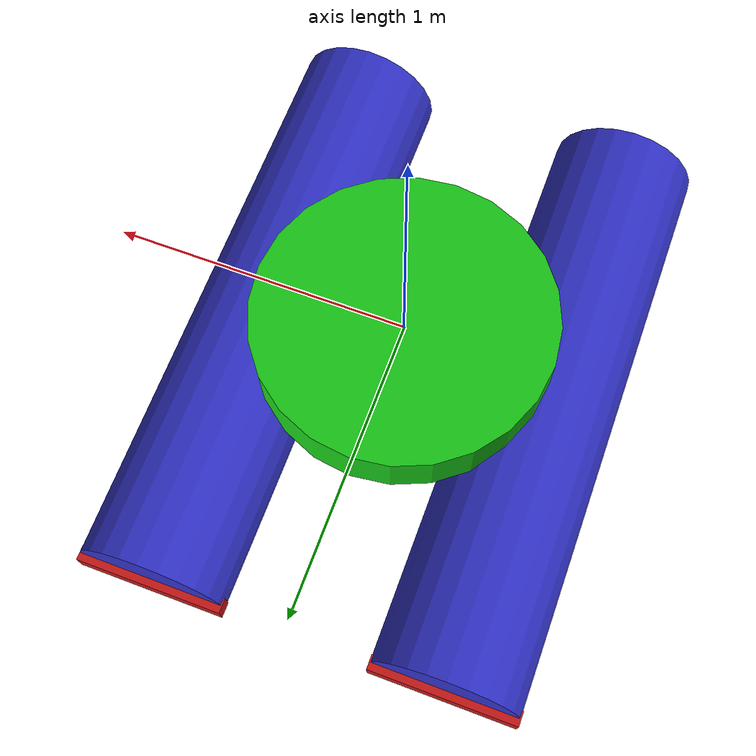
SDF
<?xml version="1.0" ?>
<sdf version="1.6">
  <model name="diff_drive_robot">
    <!-- Main body (small, just for reference) -->
    <link name="robot_link">
      <pose>0 0 0 0 0 0</pose>
      <inertial>
        <mass>5</mass> <!-- Reduced mass for floating -->
        <inertia>
          <ixx>3</ixx>
          <iyy>0.658</iyy>
          <izz>1.25</izz>
        </inertia>
      </inertial>
      <collision name="collision">
        <geometry>
          <cylinder>
            <radius>0.5</radius>
            <length>0.2</length>
          </cylinder>
        </geometry>
      </collision>
      <visual name="visual">
        <geometry>
          <cylinder>
            <radius>0.5</radius>
            <length>0.2</length>
          </cylinder>
        </geometry>
        <material>
          <ambient>0.1 0.8 0.1 1</ambient>
          <diffuse>0.1 0.8 0.1 1</diffuse>
        </material>
      </visual>
    </link>

    <!-- Left Floater (pontoon) -->
    <link name="left_floater">
      <pose>-0.5 0.0 -0.3 1.57 0 0</pose>
      <inertial>
        <mass>15</mass>
        <inertia>
          <ixx>3</ixx>  <!-- For rotation around length axis -->
          <iyy>0.33</iyy>  <!-- For vertical rotation -->
          <izz>0.625</izz>
        </inertia>
      </inertial>
      <collision name="collision">
        <geometry>
          <cylinder>
            <radius>0.25</radius>
            <length>2.0</length>
          </cylinder>
        </geometry>
      </collision>
      <visual name="visual">
        <geometry>
          <cylinder>
            <radius>0.25</radius>
            <length>2.0</length>
          </cylinder>
        </geometry>
        <material>
          <ambient>0.2 0.2 0.8 1</ambient>
        </material>
      </visual>
      <velocity_decay>
        <linear>0.3</linear>
        <angular>0.3</angular>
      </velocity_decay>
    </link>

    <!-- Right Floater (pontoon) -->
    <link name="right_floater">
      <pose>0.5 0 -0.3 1.57 0 0</pose>
      <inertial>
        <mass>15</mass>
        <inertia>
          <ixx>3</ixx>  <!-- For rotation around length axis -->
          <iyy>0.33</iyy>  <!-- For vertical rotation -->
          <izz>0.625</izz>
        </inertia>
      </inertial>
      <collision name="collision">
        <geometry>
          <cylinder>
            <radius>0.25</radius>
            <length>2.0</length>
          </cylinder>
        </geometry>
      </collision>
      <visual name="visual">
        <geometry>
          <cylinder>
            <radius>0.25</radius>
            <length>2.0</length>
          </cylinder>
        </geometry>
        <material>
          <ambient>0.2 0.2 0.8 1</ambient>
        </material>
      </visual>
      <velocity_decay>
        <linear>0.3</linear>
        <angular>0.3</angular>
      </velocity_decay>
    </link>

  <plugin name="custom_buoyancy" filename="librobot_buoyancy_wave.so">
    <liquid_density>997.0</liquid_density>
    <link name="left_floater">
      <volume>0.4</volume>
      <radius>0.25</radius>
      <cyl_height>2.0</cyl_height>
    </link>
    <link name="right_floater">
      <volume>0.4</volume>
      <radius>0.25</radius>
      <cyl_height>2.0</cyl_height>
    </link>
  </plugin>

    <!-- Left Wheel (motor) at end of left floater -->
    <link name="left_wheel">
      <pose>-0.5 1.0 -0.3 1.57 0 0</pose>
      <inertial>
        <mass>0.0001</mass>
        <inertia>
          <ixx>0.00000018</ixx>
          <iyy>0.00000018</iyy>
          <izz>0.00000032</izz>
        </inertia>
      </inertial>
      <collision name="collision">
        <geometry>
          <cylinder>
            <radius>0.08</radius>
            <length>0.05</length>
          </cylinder>
        </geometry>
      </collision>
      <visual name="visual">
        <geometry>
          <box>
            <size>0.5 0.08 0.05</size>
          </box>
        </geometry>
        <material>
          <ambient>0.8 0.1 0.1 1</ambient>
          <diffuse>0.8 0.1 0.1 1</diffuse>
          <specular>0.2 0.2 0.2 1</specular>
          <emissive>0 0 0 1</emissive>
        </material>
      </visual>
    </link>

    <!-- Right Wheel (motor) at end of right floater -->
    <link name="right_wheel">
      <pose>0.5 1.0 -0.3 1.57 0 0</pose>
      <inertial>
        <mass>0.0001</mass>
      <inertia>
        <ixx>0.00000018</ixx>
        <iyy>0.00000018</iyy>
        <izz>0.00000032</izz>
      </inertia>
      </inertial>
      <collision name="collision">
        <geometry>
          <cylinder>
            <radius>0.08</radius>
            <length>0.05</length>
          </cylinder>
        </geometry>
      </collision>
      <visual name="visual">
        <geometry>
          <box>
            <size>0.5 0.08 0.05</size>
          </box>
        </geometry>
        <material>
          <ambient>0.8 0.1 0.1 1</ambient>
          <diffuse>0.8 0.1 0.1 1</diffuse>
          <specular>0.2 0.2 0.2 1</specular>
          <emissive>0 0 0 1</emissive>
        </material>
      </visual>
    </link>

    <!-- Joints -->
    <joint name="left_floater_joint" type="fixed">
      <parent>robot_link</parent>
      <child>left_floater</child>
    </joint>
    <joint name="right_floater_joint" type="fixed">
      <parent>robot_link</parent>
      <child>right_floater</child>
    </joint>
    <joint name="left_wheel_joint" type="revolute">
      <parent>left_floater</parent>
      <child>left_wheel</child>
      <axis>
        <xyz>0 0 1</xyz>
        <limit>
          <lower>-1000</lower>
          <upper>1000</upper>
        </limit>
      </axis>
      <velocity_decay>
        <linear>0.3</linear>
        <angular>0.3</angular>
      </velocity_decay>
    </joint>
    <joint name="right_wheel_joint" type="revolute">
      <parent>right_floater</parent>
      <child>right_wheel</child>
      <axis>
        <xyz>0 0 1</xyz>
        <limit>
          <lower>-1000</lower>
          <upper>1000</upper>
        </limit>
      </axis>
      <velocity_decay>
        <linear>0.3</linear>
        <angular>0.3</angular>
      </velocity_decay>
    </joint>

    <plugin name="diff_drive" filename="libgazebo_ros_diff_drive.so">
        <ros>
          <namespace>/diff_drive_robot</namespace>
        </ros>
        <!-- wheel info -->
        <left_joint>left_wheel_joint</left_joint>
        <right_joint>right_wheel_joint</right_joint>
        <wheel_separation>0.38</wheel_separation>
        <wheel_diameter>0.1</wheel_diameter>

        <!-- Limits -->
        <max_wheel_torque>200</max_wheel_torque>
        <max_wheel_acceleration>10.0</max_wheel_acceleration>

        <!-- Output -->
        <odometry_frame>odom</odometry_frame>
        <robot_base_frame>base_link</robot_base_frame>

        <publish_odom>true</publish_odom>
        <publish_odom_tf>true</publish_odom_tf>
        <publish_wheel_tf>true</publish_wheel_tf>
    </plugin>

    <!-- Thrust plugin for thrusters -->

  <plugin name="thrust_plugin" filename="libthrust_plugin.so">
    <left_wheel_joint>left_wheel_joint</left_wheel_joint>
    <right_wheel_joint>right_wheel_joint</right_wheel_joint>
    <thrust_gain>1000.0</thrust_gain>
    <topic>/diff_drive_robot/thruster_cmd</topic>
    <update_rate>50</update_rate>
    <max_thrust>100</max_thrust>
    <min_thrust>-100</min_thrust>
  </plugin>

  </model>
</sdf>
